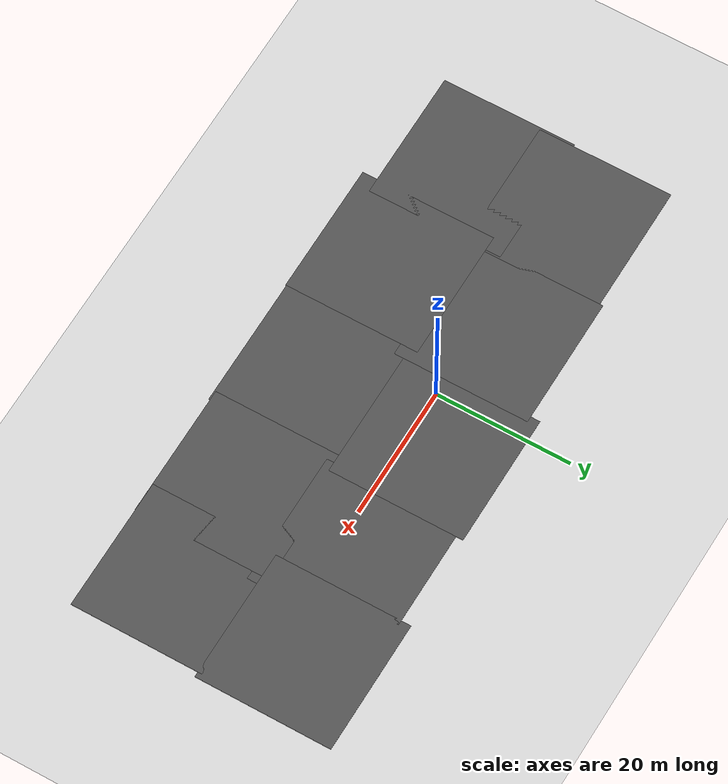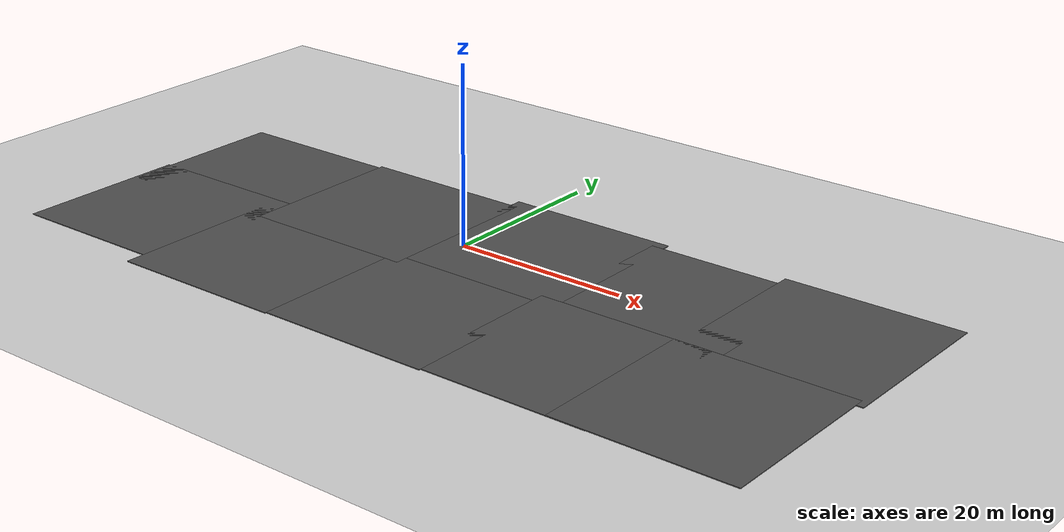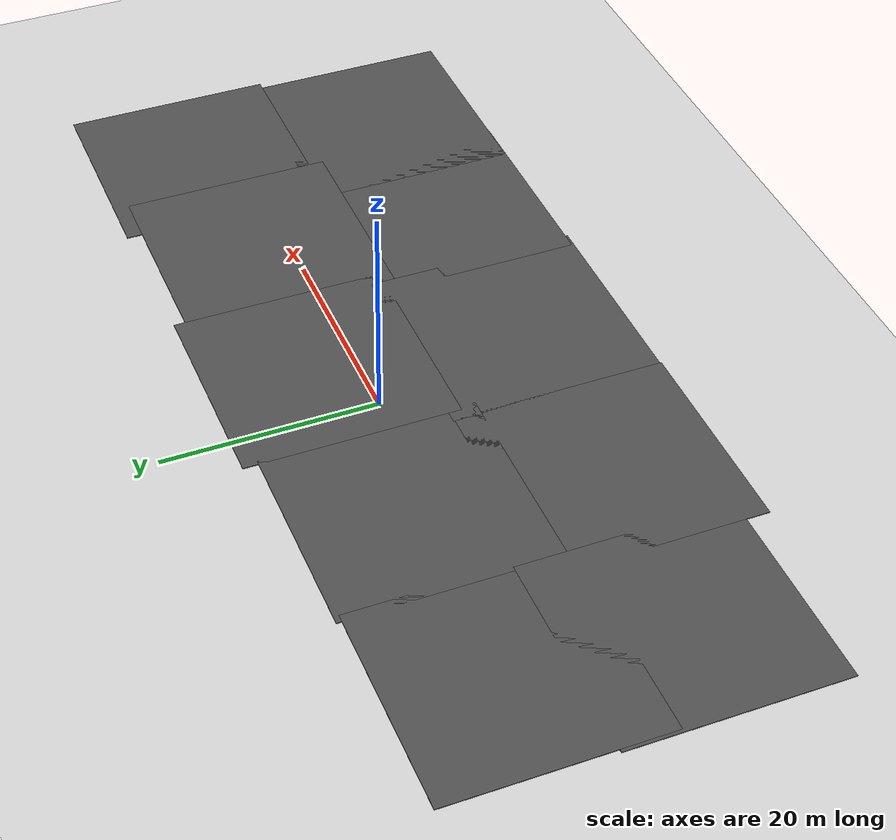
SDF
<sdf version="1.6">
 <world name="default">
  <light name="sun" type="directional">
   <pose>0 0 10 0 -0 0</pose>
   <diffuse>0.8 0.8 0.8 1</diffuse>
   <specular>0.1 0.1 0.1 1</specular>
   <attenuation>
    <range>1000</range>
    <constant>0.9</constant>
    <linear>0.01</linear>
    <quadratic>0.001</quadratic>
   </attenuation>
   <direction>-0.5 0.5 -1</direction>
  </light>
  <model name="ground_plane">
   <static>1</static>
   <link name="link">
    <collision name="collision">
     <geometry><plane><normal>0 0 1</normal><size>100 100</size></plane></geometry>
     <surface><friction><ode><mu>100</mu><mu2>50</mu2></ode></friction></surface>
    </collision>
    <visual name="visual">
     <cast_shadows>0</cast_shadows>
     <geometry><plane><normal>0 0 1</normal><size>100 100</size></plane></geometry>
     <material>
      <script><uri>file://media/materials/scripts/gazebo.material</uri><name>Gazebo/Grey</name></script>
     </material>
    </visual>
   </link>
  </model>
  <gravity>0 0 -9.8</gravity>
  <magnetic_field>6e-06 2.3e-05 -4.2e-05</magnetic_field>
  <atmosphere type="adiabatic"/>
  <physics name="default_physics" default="0" type="ode">
   <max_step_size>0.001</max_step_size>
   <real_time_factor>1</real_time_factor>
   <real_time_update_rate>1000</real_time_update_rate>
  </physics>
  <scene><ambient>0.4 0.4 0.4 1</ambient><background>0.7 0.7 0.7 1</background><shadows>1</shadows></scene>
  <spherical_coordinates>
   <surface_model>EARTH_WGS84</surface_model>
   <latitude_deg>0</latitude_deg>
   <longitude_deg>0</longitude_deg>
   <elevation>0</elevation>
   <heading_deg>0</heading_deg>
  </spherical_coordinates>
  <light name="user_point_light_0" type="point">
   <pose>-6.14489 -10.293 1 0 -0 0</pose>
   <diffuse>0.5 0.5 0.5 1</diffuse>
   <specular>0.1 0.1 0.1 1</specular>
   <attenuation>
    <range>20</range>
    <constant>0.5</constant>
    <linear>0.01</linear>
    <quadratic>0.001</quadratic>
   </attenuation>
   <cast_shadows>0</cast_shadows>
   <direction>0 0 -1</direction>
  </light>
  <model name="asphalt_plane">
   <static>1</static>
   <link name="link">
    <collision name="collision"><geometry><box><size>20 20 0.1</size></box></geometry></collision>
    <visual name="visual">
     <cast_shadows>0</cast_shadows>
     <geometry><box><size>20 20 0.1</size></box></geometry>
     <material>
      <script>
       <uri>model://asphalt_plane/materials/scripts</uri>
       <uri>model://asphalt_plane/materials/textures</uri>
       <name>vrc/asphalt</name>
      </script>
     </material>
    </visual>
   </link>
   <pose>-31.7253 1.74105 0 0 -0 0</pose>
  </model>
  <model name="asphalt_plane_clone">
   <static>1</static>
   <link name="link">
    <collision name="collision"><geometry><box><size>20 20 0.1</size></box></geometry></collision>
    <visual name="visual">
     <cast_shadows>0</cast_shadows>
     <geometry><box><size>20 20 0.1</size></box></geometry>
     <material>
      <script>
       <uri>model://asphalt_plane/materials/scripts</uri>
       <uri>model://asphalt_plane/materials/textures</uri>
       <name>vrc/asphalt</name>
      </script>
     </material>
    </visual>
   </link>
   <pose>-12.4358 2.20706 0 0 -0 0</pose>
  </model>
  <model name="asphalt_plane_clone_0">
   <static>1</static>
   <link name="link">
    <collision name="collision"><geometry><box><size>20 20 0.1</size></box></geometry></collision>
    <visual name="visual">
     <cast_shadows>0</cast_shadows>
     <geometry><box><size>20 20 0.1</size></box></geometry>
     <material>
      <script>
       <uri>model://asphalt_plane/materials/scripts</uri>
       <uri>model://asphalt_plane/materials/textures</uri>
       <name>vrc/asphalt</name>
      </script>
     </material>
    </visual>
   </link>
   <pose>6.70176 3.61641 0 0 -0 0</pose>
  </model>
  <model name="asphalt_plane_clone_1">
   <static>1</static>
   <link name="link">
    <collision name="collision"><geometry><box><size>20 20 0.1</size></box></geometry></collision>
    <visual name="visual">
     <cast_shadows>0</cast_shadows>
     <geometry><box><size>20 20 0.1</size></box></geometry>
     <material>
      <script>
       <uri>model://asphalt_plane/materials/scripts</uri>
       <uri>model://asphalt_plane/materials/textures</uri>
       <name>vrc/asphalt</name>
      </script>
     </material>
    </visual>
   </link>
   <pose>25.3618 2.58332 0 0 -0 0</pose>
  </model>
  <model name="asphalt_plane_clone_2">
   <static>1</static>
   <link name="link">
    <collision name="collision"><geometry><box><size>20 20 0.1</size></box></geometry></collision>
    <visual name="visual">
     <cast_shadows>0</cast_shadows>
     <geometry><box><size>20 20 0.1</size></box></geometry>
     <material>
      <script>
       <uri>model://asphalt_plane/materials/scripts</uri>
       <uri>model://asphalt_plane/materials/textures</uri>
       <name>vrc/asphalt</name>
      </script>
     </material>
    </visual>
   </link>
   <pose>40.614 4.03714 0 0 -0 0</pose>
  </model>
  <model name="asphalt_plane_clone_3">
   <static>1</static>
   <link name="link">
    <collision name="collision"><geometry><box><size>20 20 0.1</size></box></geometry></collision>
    <visual name="visual">
     <cast_shadows>0</cast_shadows>
     <geometry><box><size>20 20 0.1</size></box></geometry>
     <material>
      <script>
       <uri>model://asphalt_plane/materials/scripts</uri>
       <uri>model://asphalt_plane/materials/textures</uri>
       <name>vrc/asphalt</name>
      </script>
     </material>
    </visual>
   </link>
   <pose>39.8556 -14.8677 0 0 -0 0</pose>
  </model>
  <model name="asphalt_plane_clone_4">
   <static>1</static>
   <link name="link">
    <collision name="collision"><geometry><box><size>20 20 0.1</size></box></geometry></collision>
    <visual name="visual">
     <cast_shadows>0</cast_shadows>
     <geometry><box><size>20 20 0.1</size></box></geometry>
     <material>
      <script>
       <uri>model://asphalt_plane/materials/scripts</uri>
       <uri>model://asphalt_plane/materials/textures</uri>
       <name>vrc/asphalt</name>
      </script>
     </material>
    </visual>
   </link>
   <pose>24.1294 -14.9236 0 0 -0 0</pose>
  </model>
  <model name="asphalt_plane_clone_5">
   <static>1</static>
   <link name="link">
    <collision name="collision"><geometry><box><size>20 20 0.1</size></box></geometry></collision>
    <visual name="visual">
     <cast_shadows>0</cast_shadows>
     <geometry><box><size>20 20 0.1</size></box></geometry>
     <material>
      <script>
       <uri>model://asphalt_plane/materials/scripts</uri>
       <uri>model://asphalt_plane/materials/textures</uri>
       <name>vrc/asphalt</name>
      </script>
     </material>
    </visual>
   </link>
   <pose>5.57085 -15.13 0 0 -0 0</pose>
  </model>
  <model name="asphalt_plane_clone_6">
   <static>1</static>
   <link name="link">
    <collision name="collision"><geometry><box><size>20 20 0.1</size></box></geometry></collision>
    <visual name="visual">
     <cast_shadows>0</cast_shadows>
     <geometry><box><size>20 20 0.1</size></box></geometry>
     <material>
      <script>
       <uri>model://asphalt_plane/materials/scripts</uri>
       <uri>model://asphalt_plane/materials/textures</uri>
       <name>vrc/asphalt</name>
      </script>
     </material>
    </visual>
   </link>
   <pose>-14.1146 -15.2662 0 0 -0 0</pose>
  </model>
  <model name="asphalt_plane_clone_7">
   <static>1</static>
   <link name="link">
    <collision name="collision"><geometry><box><size>20 20 0.1</size></box></geometry></collision>
    <visual name="visual">
     <cast_shadows>0</cast_shadows>
     <geometry><box><size>20 20 0.1</size></box></geometry>
     <material>
      <script>
       <uri>model://asphalt_plane/materials/scripts</uri>
       <uri>model://asphalt_plane/materials/textures</uri>
       <name>vrc/asphalt</name>
      </script>
     </material>
    </visual>
   </link>
   <pose>-32.0193 -13.067 0 0 -0 0</pose>
  </model>
  <light name="user_point_light_1" type="point">
   <pose>22.4709 2.508 1 0 -0 0</pose>
   <diffuse>0.5 0.5 0.5 1</diffuse>
   <specular>0.1 0.1 0.1 1</specular>
   <attenuation>
    <range>20</range>
    <constant>0.5</constant>
    <linear>0.01</linear>
    <quadratic>0.001</quadratic>
   </attenuation>
   <cast_shadows>0</cast_shadows>
   <direction>0 0 -1</direction>
  </light>
 </world>
</sdf>
